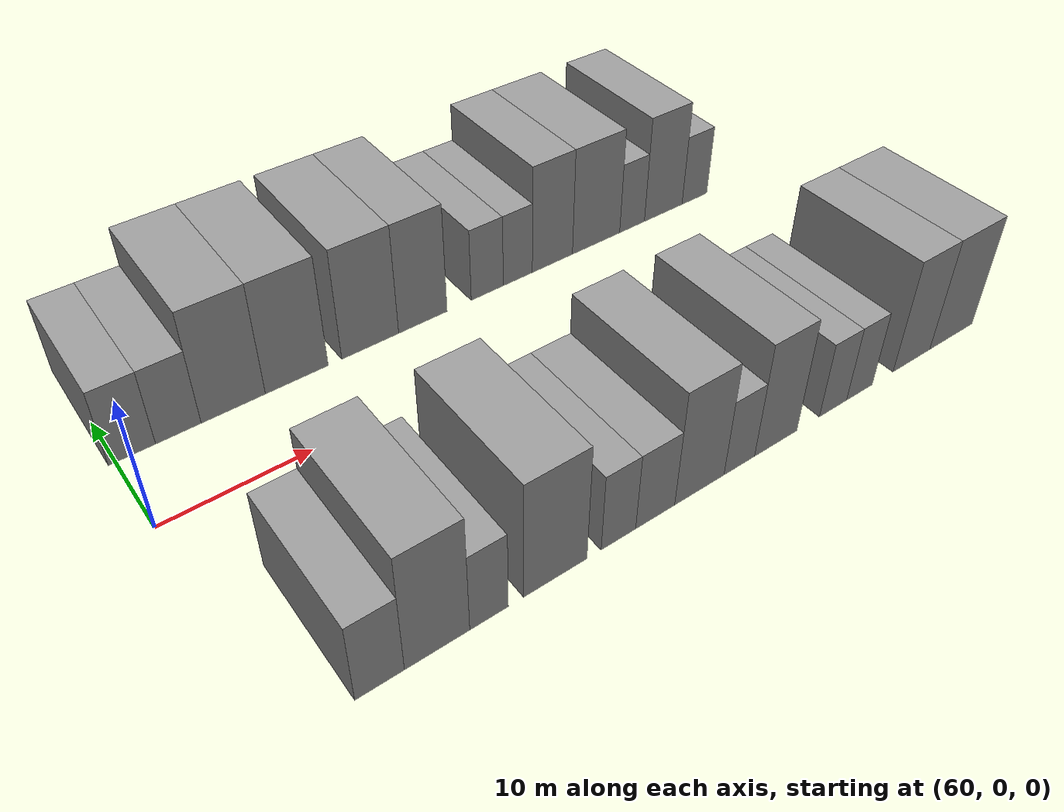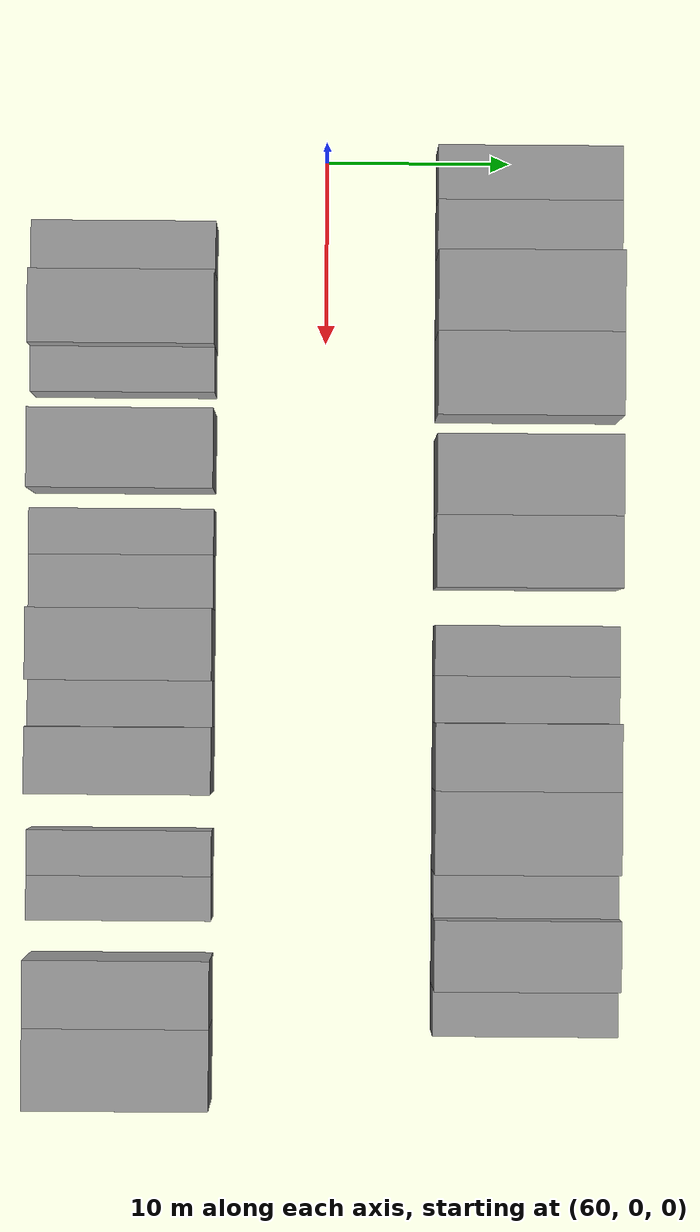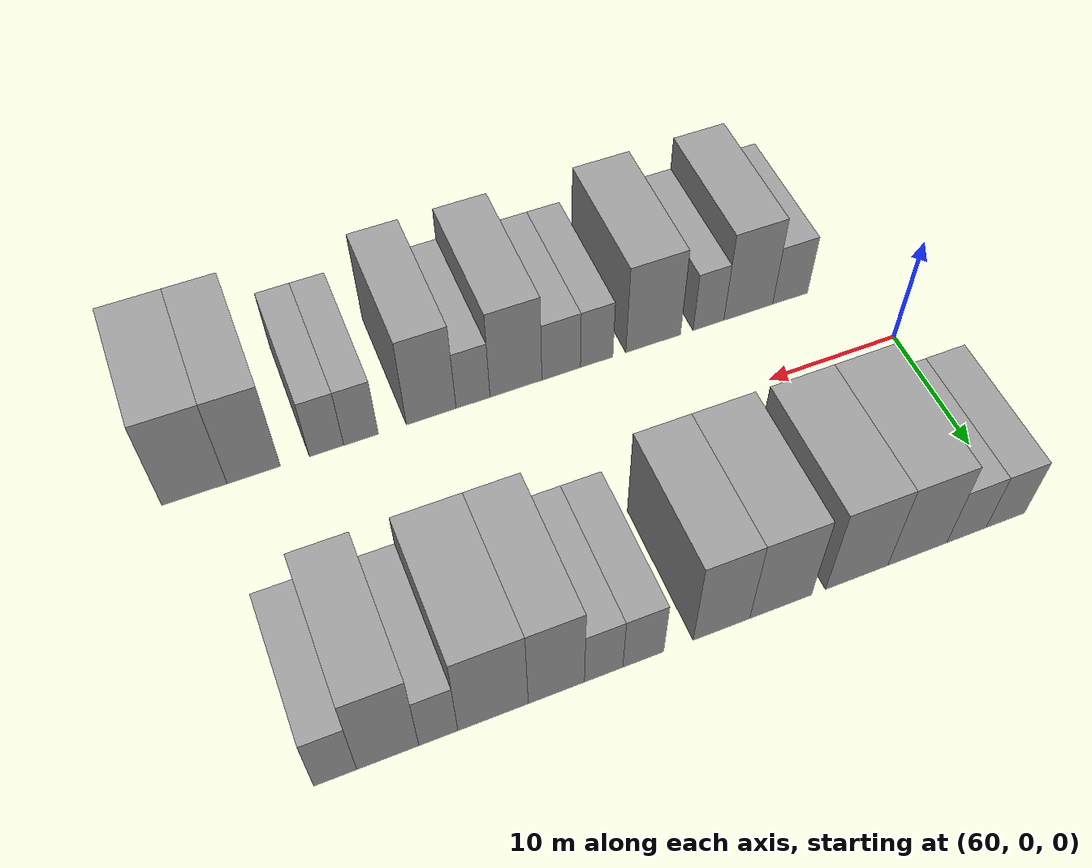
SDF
<sdf version="1.6">
 <world name="default">
  <model name="building_14">
   <static>1</static>
   <pose>61.0347 11.0000 0 0.000000 0.000000 1.570796</pose>
   <link name="link">
    <pose>0 0 3.00 0 0 0</pose>
    <collision name="collision"><geometry><box><size>10.0000 2.9471 6.0000</size></box></geometry></collision>
    <visual name="visual">
     <cast_shadows>0</cast_shadows>
     <geometry><box><size>10.0000 2.9471 6.0000</size></box></geometry>
     <material>
      <script>
       <uri>model://grey_wall/materials/scripts</uri>
       <uri>model://grey_wall/materials/textures</uri>
       <name>vrc/grey_wall</name>
      </script>
     </material>
    </visual>
   </link>
  </model>
  <model name="building_15">
   <static>1</static>
   <pose>63.9837 11.0000 0 0.000000 0.000000 1.570796</pose>
   <link name="link">
    <pose>0 0 3.00 0 0 0</pose>
    <collision name="collision"><geometry><box><size>10.0000 2.9508 6.0000</size></box></geometry></collision>
    <visual name="visual">
     <cast_shadows>0</cast_shadows>
     <geometry><box><size>10.0000 2.9508 6.0000</size></box></geometry>
     <material>
      <script>
       <uri>model://grey_wall/materials/scripts</uri>
       <uri>model://grey_wall/materials/textures</uri>
       <name>vrc/grey_wall</name>
      </script>
     </material>
    </visual>
   </link>
  </model>
  <model name="building_16">
   <static>1</static>
   <pose>67.6366 11.0000 0 0.000000 0.000000 1.570796</pose>
   <link name="link">
    <pose>0 0 4.50 0 0 0</pose>
    <collision name="collision"><geometry><box><size>10.0000 4.3550 9.0000</size></box></geometry></collision>
    <visual name="visual">
     <cast_shadows>0</cast_shadows>
     <geometry><box><size>10.0000 4.3550 9.0000</size></box></geometry>
     <material>
      <script>
       <uri>model://grey_wall/materials/scripts</uri>
       <uri>model://grey_wall/materials/textures</uri>
       <name>vrc/grey_wall</name>
      </script>
     </material>
    </visual>
   </link>
  </model>
  <model name="building_17">
   <static>1</static>
   <pose>72.0608 11.0000 0 0.000000 0.000000 1.570796</pose>
   <link name="link">
    <pose>0 0 4.50 0 0 0</pose>
    <collision name="collision"><geometry><box><size>10.0000 4.4936 9.0000</size></box></geometry></collision>
    <visual name="visual">
     <cast_shadows>0</cast_shadows>
     <geometry><box><size>10.0000 4.4936 9.0000</size></box></geometry>
     <material>
      <script>
       <uri>model://grey_wall/materials/scripts</uri>
       <uri>model://grey_wall/materials/textures</uri>
       <name>vrc/grey_wall</name>
      </script>
     </material>
    </visual>
   </link>
  </model>
  <model name="building_18">
   <static>1</static>
   <pose>77.4810 11.0000 0 0.000000 0.000000 1.570796</pose>
   <link name="link">
    <pose>0 0 4.50 0 0 0</pose>
    <collision name="collision"><geometry><box><size>10.0000 4.3468 9.0000</size></box></geometry></collision>
    <visual name="visual">
     <cast_shadows>0</cast_shadows>
     <geometry><box><size>10.0000 4.3468 9.0000</size></box></geometry>
     <material>
      <script>
       <uri>model://grey_wall/materials/scripts</uri>
       <uri>model://grey_wall/materials/textures</uri>
       <name>vrc/grey_wall</name>
      </script>
     </material>
    </visual>
   </link>
  </model>
  <model name="building_19">
   <static>1</static>
   <pose>81.5940 11.0000 0 0.000000 0.000000 1.570796</pose>
   <link name="link">
    <pose>0 0 4.50 0 0 0</pose>
    <collision name="collision"><geometry><box><size>10.0000 3.8792 9.0000</size></box></geometry></collision>
    <visual name="visual">
     <cast_shadows>0</cast_shadows>
     <geometry><box><size>10.0000 3.8792 9.0000</size></box></geometry>
     <material>
      <script>
       <uri>model://grey_wall/materials/scripts</uri>
       <uri>model://grey_wall/materials/textures</uri>
       <name>vrc/grey_wall</name>
      </script>
     </material>
    </visual>
   </link>
  </model>
  <model name="building_20">
   <static>1</static>
   <pose>86.8981 11.0000 0 0.000000 0.000000 1.570796</pose>
   <link name="link">
    <pose>0 0 3.00 0 0 0</pose>
    <collision name="collision"><geometry><box><size>10.0000 2.7290 6.0000</size></box></geometry></collision>
    <visual name="visual">
     <cast_shadows>0</cast_shadows>
     <geometry><box><size>10.0000 2.7290 6.0000</size></box></geometry>
     <material>
      <script>
       <uri>model://grey_wall/materials/scripts</uri>
       <uri>model://grey_wall/materials/textures</uri>
       <name>vrc/grey_wall</name>
      </script>
     </material>
    </visual>
   </link>
  </model>
  <model name="building_21">
   <static>1</static>
   <pose>89.5289 11.0000 0 0.000000 0.000000 1.570796</pose>
   <link name="link">
    <pose>0 0 3.00 0 0 0</pose>
    <collision name="collision"><geometry><box><size>10.0000 2.5326 6.0000</size></box></geometry></collision>
    <visual name="visual">
     <cast_shadows>0</cast_shadows>
     <geometry><box><size>10.0000 2.5326 6.0000</size></box></geometry>
     <material>
      <script>
       <uri>model://grey_wall/materials/scripts</uri>
       <uri>model://grey_wall/materials/textures</uri>
       <name>vrc/grey_wall</name>
      </script>
     </material>
    </visual>
   </link>
  </model>
  <model name="building_22">
   <static>1</static>
   <pose>92.6127 11.0000 0 0.000000 0.000000 1.570796</pose>
   <link name="link">
    <pose>0 0 4.50 0 0 0</pose>
    <collision name="collision"><geometry><box><size>10.0000 3.6350 9.0000</size></box></geometry></collision>
    <visual name="visual">
     <cast_shadows>0</cast_shadows>
     <geometry><box><size>10.0000 3.6350 9.0000</size></box></geometry>
     <material>
      <script>
       <uri>model://grey_wall/materials/scripts</uri>
       <uri>model://grey_wall/materials/textures</uri>
       <name>vrc/grey_wall</name>
      </script>
     </material>
    </visual>
   </link>
  </model>
  <model name="building_23">
   <static>1</static>
   <pose>96.6629 11.0000 0 0.000000 0.000000 1.570796</pose>
   <link name="link">
    <pose>0 0 4.50 0 0 0</pose>
    <collision name="collision"><geometry><box><size>10.0000 4.4656 9.0000</size></box></geometry></collision>
    <visual name="visual">
     <cast_shadows>0</cast_shadows>
     <geometry><box><size>10.0000 4.4656 9.0000</size></box></geometry>
     <material>
      <script>
       <uri>model://grey_wall/materials/scripts</uri>
       <uri>model://grey_wall/materials/textures</uri>
       <name>vrc/grey_wall</name>
      </script>
     </material>
    </visual>
   </link>
  </model>
  <model name="building_24">
   <static>1</static>
   <pose>100.1075 11.0000 0 0.000000 0.000000 1.570796</pose>
   <link name="link">
    <pose>0 0 3.00 0 0 0</pose>
    <collision name="collision"><geometry><box><size>10.0000 2.4235 6.0000</size></box></geometry></collision>
    <visual name="visual">
     <cast_shadows>0</cast_shadows>
     <geometry><box><size>10.0000 2.4235 6.0000</size></box></geometry>
     <material>
      <script>
       <uri>model://grey_wall/materials/scripts</uri>
       <uri>model://grey_wall/materials/textures</uri>
       <name>vrc/grey_wall</name>
      </script>
     </material>
    </visual>
   </link>
  </model>
  <model name="building_25">
   <static>1</static>
   <pose>103.2230 11.0000 0 0.000000 0.000000 1.570796</pose>
   <link name="link">
    <pose>0 0 4.50 0 0 0</pose>
    <collision name="collision"><geometry><box><size>10.0000 3.8074 9.0000</size></box></geometry></collision>
    <visual name="visual">
     <cast_shadows>0</cast_shadows>
     <geometry><box><size>10.0000 3.8074 9.0000</size></box></geometry>
     <material>
      <script>
       <uri>model://grey_wall/materials/scripts</uri>
       <uri>model://grey_wall/materials/textures</uri>
       <name>vrc/grey_wall</name>
      </script>
     </material>
    </visual>
   </link>
  </model>
  <model name="building_26">
   <static>1</static>
   <pose>106.4189 11.0000 0 0.000000 0.000000 1.570796</pose>
   <link name="link">
    <pose>0 0 3.00 0 0 0</pose>
    <collision name="collision"><geometry><box><size>10.0000 2.5844 6.0000</size></box></geometry></collision>
    <visual name="visual">
     <cast_shadows>0</cast_shadows>
     <geometry><box><size>10.0000 2.5844 6.0000</size></box></geometry>
     <material>
      <script>
       <uri>model://grey_wall/materials/scripts</uri>
       <uri>model://grey_wall/materials/textures</uri>
       <name>vrc/grey_wall</name>
      </script>
     </material>
    </visual>
   </link>
  </model>
  <model name="building_66">
   <static>1</static>
   <pose>65.2210 -11.0000 0 0.000000 0.000000 1.570796</pose>
   <link name="link">
    <pose>0 0 3.00 0 0 0</pose>
    <collision name="collision"><geometry><box><size>10.0000 2.8617 6.0000</size></box></geometry></collision>
    <visual name="visual">
     <cast_shadows>0</cast_shadows>
     <geometry><box><size>10.0000 2.8617 6.0000</size></box></geometry>
     <material>
      <script>
       <uri>model://grey_wall/materials/scripts</uri>
       <uri>model://grey_wall/materials/textures</uri>
       <name>vrc/grey_wall</name>
      </script>
     </material>
    </visual>
   </link>
  </model>
  <model name="building_67">
   <static>1</static>
   <pose>68.6306 -11.0000 0 0.000000 0.000000 1.570796</pose>
   <link name="link">
    <pose>0 0 4.50 0 0 0</pose>
    <collision name="collision"><geometry><box><size>10.0000 3.9574 9.0000</size></box></geometry></collision>
    <visual name="visual">
     <cast_shadows>0</cast_shadows>
     <geometry><box><size>10.0000 3.9574 9.0000</size></box></geometry>
     <material>
      <script>
       <uri>model://grey_wall/materials/scripts</uri>
       <uri>model://grey_wall/materials/textures</uri>
       <name>vrc/grey_wall</name>
      </script>
     </material>
    </visual>
   </link>
  </model>
  <model name="building_68">
   <static>1</static>
   <pose>71.8348 -11.0000 0 0.000000 0.000000 1.570796</pose>
   <link name="link">
    <pose>0 0 3.00 0 0 0</pose>
    <collision name="collision"><geometry><box><size>10.0000 2.4510 6.0000</size></box></geometry></collision>
    <visual name="visual">
     <cast_shadows>0</cast_shadows>
     <geometry><box><size>10.0000 2.4510 6.0000</size></box></geometry>
     <material>
      <script>
       <uri>model://grey_wall/materials/scripts</uri>
       <uri>model://grey_wall/materials/textures</uri>
       <name>vrc/grey_wall</name>
      </script>
     </material>
    </visual>
   </link>
  </model>
  <model name="building_69">
   <static>1</static>
   <pose>76.2057 -11.0000 0 0.000000 0.000000 1.570796</pose>
   <link name="link">
    <pose>0 0 4.50 0 0 0</pose>
    <collision name="collision"><geometry><box><size>10.0000 4.2909 9.0000</size></box></geometry></collision>
    <visual name="visual">
     <cast_shadows>0</cast_shadows>
     <geometry><box><size>10.0000 4.2909 9.0000</size></box></geometry>
     <material>
      <script>
       <uri>model://grey_wall/materials/scripts</uri>
       <uri>model://grey_wall/materials/textures</uri>
       <name>vrc/grey_wall</name>
      </script>
     </material>
    </visual>
   </link>
  </model>
  <model name="building_70">
   <static>1</static>
   <pose>80.5967 -11.0000 0 0.000000 0.000000 1.570796</pose>
   <link name="link">
    <pose>0 0 3.00 0 0 0</pose>
    <collision name="collision"><geometry><box><size>10.0000 2.4910 6.0000</size></box></geometry></collision>
    <visual name="visual">
     <cast_shadows>0</cast_shadows>
     <geometry><box><size>10.0000 2.4910 6.0000</size></box></geometry>
     <material>
      <script>
       <uri>model://grey_wall/materials/scripts</uri>
       <uri>model://grey_wall/materials/textures</uri>
       <name>vrc/grey_wall</name>
      </script>
     </material>
    </visual>
   </link>
  </model>
  <model name="building_71">
   <static>1</static>
   <pose>83.3028 -11.0000 0 0.000000 0.000000 1.570796</pose>
   <link name="link">
    <pose>0 0 3.00 0 0 0</pose>
    <collision name="collision"><geometry><box><size>10.0000 2.9211 6.0000</size></box></geometry></collision>
    <visual name="visual">
     <cast_shadows>0</cast_shadows>
     <geometry><box><size>10.0000 2.9211 6.0000</size></box></geometry>
     <material>
      <script>
       <uri>model://grey_wall/materials/scripts</uri>
       <uri>model://grey_wall/materials/textures</uri>
       <name>vrc/grey_wall</name>
      </script>
     </material>
    </visual>
   </link>
  </model>
  <model name="building_72">
   <static>1</static>
   <pose>86.6988 -11.0000 0 0.000000 0.000000 1.570796</pose>
   <link name="link">
    <pose>0 0 4.50 0 0 0</pose>
    <collision name="collision"><geometry><box><size>10.0000 3.8709 9.0000</size></box></geometry></collision>
    <visual name="visual">
     <cast_shadows>0</cast_shadows>
     <geometry><box><size>10.0000 3.8709 9.0000</size></box></geometry>
     <material>
      <script>
       <uri>model://grey_wall/materials/scripts</uri>
       <uri>model://grey_wall/materials/textures</uri>
       <name>vrc/grey_wall</name>
      </script>
     </material>
    </visual>
   </link>
  </model>
  <model name="building_73">
   <static>1</static>
   <pose>89.8842 -11.0000 0 0.000000 0.000000 1.570796</pose>
   <link name="link">
    <pose>0 0 3.00 0 0 0</pose>
    <collision name="collision"><geometry><box><size>10.0000 2.5000 6.0000</size></box></geometry></collision>
    <visual name="visual">
     <cast_shadows>0</cast_shadows>
     <geometry><box><size>10.0000 2.5000 6.0000</size></box></geometry>
     <material>
      <script>
       <uri>model://grey_wall/materials/scripts</uri>
       <uri>model://grey_wall/materials/textures</uri>
       <name>vrc/grey_wall</name>
      </script>
     </material>
    </visual>
   </link>
  </model>
  <model name="building_74">
   <static>1</static>
   <pose>92.9354 -11.0000 0 0.000000 0.000000 1.570796</pose>
   <link name="link">
    <pose>0 0 4.50 0 0 0</pose>
    <collision name="collision"><geometry><box><size>10.0000 3.6025 9.0000</size></box></geometry></collision>
    <visual name="visual">
     <cast_shadows>0</cast_shadows>
     <geometry><box><size>10.0000 3.6025 9.0000</size></box></geometry>
     <material>
      <script>
       <uri>model://grey_wall/materials/scripts</uri>
       <uri>model://grey_wall/materials/textures</uri>
       <name>vrc/grey_wall</name>
      </script>
     </material>
    </visual>
   </link>
  </model>
  <model name="building_75">
   <static>1</static>
   <pose>97.9647 -11.0000 0 0.000000 0.000000 1.570796</pose>
   <link name="link">
    <pose>0 0 3.00 0 0 0</pose>
    <collision name="collision"><geometry><box><size>10.0000 2.4561 6.0000</size></box></geometry></collision>
    <visual name="visual">
     <cast_shadows>0</cast_shadows>
     <geometry><box><size>10.0000 2.4561 6.0000</size></box></geometry>
     <material>
      <script>
       <uri>model://grey_wall/materials/scripts</uri>
       <uri>model://grey_wall/materials/textures</uri>
       <name>vrc/grey_wall</name>
      </script>
     </material>
    </visual>
   </link>
  </model>
  <model name="building_76">
   <static>1</static>
   <pose>100.3985 -11.0000 0 0.000000 0.000000 1.570796</pose>
   <link name="link">
    <pose>0 0 3.00 0 0 0</pose>
    <collision name="collision"><geometry><box><size>10.0000 2.4115 6.0000</size></box></geometry></collision>
    <visual name="visual">
     <cast_shadows>0</cast_shadows>
     <geometry><box><size>10.0000 2.4115 6.0000</size></box></geometry>
     <material>
      <script>
       <uri>model://grey_wall/materials/scripts</uri>
       <uri>model://grey_wall/materials/textures</uri>
       <name>vrc/grey_wall</name>
      </script>
     </material>
    </visual>
   </link>
  </model>
  <model name="building_77">
   <static>1</static>
   <pose>105.4260 -11.0000 0 0.000000 0.000000 1.570796</pose>
   <link name="link">
    <pose>0 0 4.50 0 0 0</pose>
    <collision name="collision"><geometry><box><size>10.0000 3.6436 9.0000</size></box></geometry></collision>
    <visual name="visual">
     <cast_shadows>0</cast_shadows>
     <geometry><box><size>10.0000 3.6436 9.0000</size></box></geometry>
     <material>
      <script>
       <uri>model://grey_wall/materials/scripts</uri>
       <uri>model://grey_wall/materials/textures</uri>
       <name>vrc/grey_wall</name>
      </script>
     </material>
    </visual>
   </link>
  </model>
  <model name="building_78">
   <static>1</static>
   <pose>109.4429 -11.0000 0 0.000000 0.000000 1.570796</pose>
   <link name="link">
    <pose>0 0 4.50 0 0 0</pose>
    <collision name="collision"><geometry><box><size>10.0000 4.3902 9.0000</size></box></geometry></collision>
    <visual name="visual">
     <cast_shadows>0</cast_shadows>
     <geometry><box><size>10.0000 4.3902 9.0000</size></box></geometry>
     <material>
      <script>
       <uri>model://grey_wall/materials/scripts</uri>
       <uri>model://grey_wall/materials/textures</uri>
       <name>vrc/grey_wall</name>
      </script>
     </material>
    </visual>
   </link>
  </model>
 </world>
</sdf>
